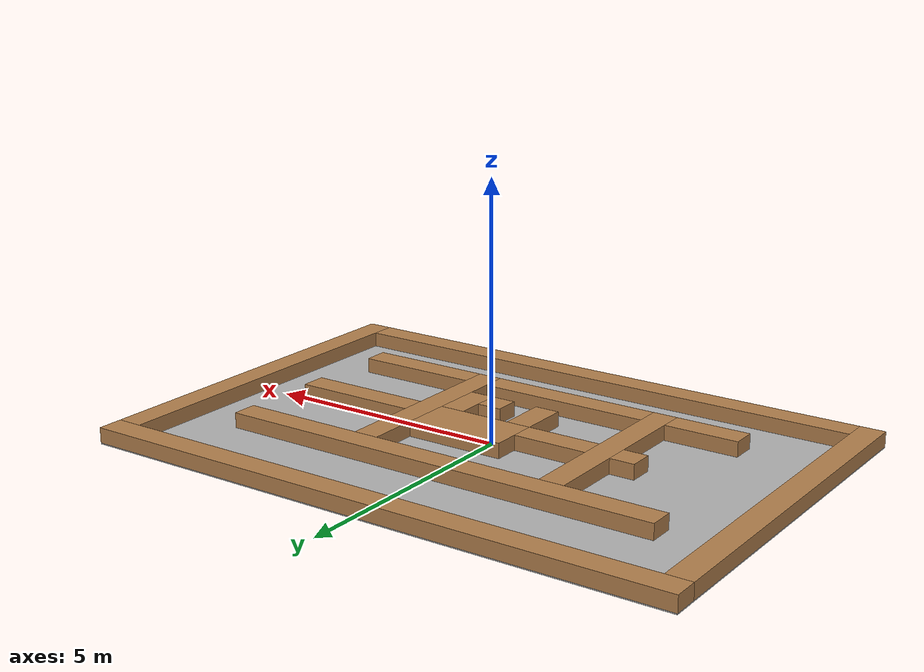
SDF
<?xml version='1.0'?>
<sdf version='1.7'><world name='default'>
  <gravity>0 0 -9.81</gravity>
  <scene><ambient>0.4 0.4 0.4 1</ambient></scene>
  <light name='sun' type='directional'>
    <pose>0 0 10 0 0 0</pose><diffuse>1 1 1 1</diffuse><specular>0.1 0.1 0.1 1</specular>
    <attenuation><range>120</range><constant>0.9</constant><linear>0.01</linear><quadratic>0.001</quadratic></attenuation>
    <direction>-0.5 0.5 -1</direction>
  </light>

    <model name='floor'><pose>0 0 -0.01 0 0 0</pose><static>true</static>
    <link name='l'>
      <collision name='c'><geometry><box><size>12.0 8.0 0.02</size></box></geometry></collision>
      <visual name='v'><geometry><box><size>12.0 8.0 0.02</size></box></geometry><material><ambient>0.30 0.30 0.30 1</ambient><diffuse>0.70 0.70 0.70 1</diffuse><specular>0.10 0.10 0.10 1</specular></material></visual>
    </link></model>

    <model name='wall_0_0'><pose>0.0 3.75 0.15 0 0 0</pose><static>true</static>
    <link name='l'>
      <collision name='c'><geometry><box><size>12.0 0.5 0.3</size></box></geometry></collision>
      <visual name='v'><geometry><box><size>12.0 0.5 0.3</size></box></geometry><material><ambient>0.30 0.20 0.10 1</ambient><diffuse>0.70 0.50 0.30 1</diffuse><specular>0.10 0.10 0.10 1</specular></material></visual>
    </link></model>
    <model name='wall_1_0'><pose>-5.75 -0.25 0.15 0 0 0</pose><static>true</static>
    <link name='l'>
      <collision name='c'><geometry><box><size>0.5 7.5 0.3</size></box></geometry></collision>
      <visual name='v'><geometry><box><size>0.5 7.5 0.3</size></box></geometry><material><ambient>0.30 0.20 0.10 1</ambient><diffuse>0.70 0.50 0.30 1</diffuse><specular>0.10 0.10 0.10 1</specular></material></visual>
    </link></model>
    <model name='wall_1_23'><pose>5.75 -0.25 0.15 0 0 0</pose><static>true</static>
    <link name='l'>
      <collision name='c'><geometry><box><size>0.5 7.5 0.3</size></box></geometry></collision>
      <visual name='v'><geometry><box><size>0.5 7.5 0.3</size></box></geometry><material><ambient>0.30 0.20 0.10 1</ambient><diffuse>0.70 0.50 0.30 1</diffuse><specular>0.10 0.10 0.10 1</specular></material></visual>
    </link></model>
    <model name='wall_4_3'><pose>0.0 1.75 0.15 0 0 0</pose><static>true</static>
    <link name='l'>
      <collision name='c'><geometry><box><size>9.0 0.5 0.3</size></box></geometry></collision>
      <visual name='v'><geometry><box><size>9.0 0.5 0.3</size></box></geometry><material><ambient>0.30 0.20 0.10 1</ambient><diffuse>0.70 0.50 0.30 1</diffuse><specular>0.10 0.10 0.10 1</specular></material></visual>
    </link></model>
    <model name='wall_5_7'><pose>-2.25 -0.5 0.15 0 0 0</pose><static>true</static>
    <link name='l'>
      <collision name='c'><geometry><box><size>0.5 4.0 0.3</size></box></geometry></collision>
      <visual name='v'><geometry><box><size>0.5 4.0 0.3</size></box></geometry><material><ambient>0.30 0.20 0.10 1</ambient><diffuse>0.70 0.50 0.30 1</diffuse><specular>0.10 0.10 0.10 1</specular></material></visual>
    </link></model>
    <model name='wall_5_15'><pose>1.75 -0.5 0.15 0 0 0</pose><static>true</static>
    <link name='l'>
      <collision name='c'><geometry><box><size>0.5 4.0 0.3</size></box></geometry></collision>
      <visual name='v'><geometry><box><size>0.5 4.0 0.3</size></box></geometry><material><ambient>0.30 0.20 0.10 1</ambient><diffuse>0.70 0.50 0.30 1</diffuse><specular>0.10 0.10 0.10 1</specular></material></visual>
    </link></model>
    <model name='wall_7_11'><pose>0.5 0.0 0.15 0 0 0</pose><static>true</static>
    <link name='l'>
      <collision name='c'><geometry><box><size>2.0 1.0 0.3</size></box></geometry></collision>
      <visual name='v'><geometry><box><size>2.0 1.0 0.3</size></box></geometry><material><ambient>0.30 0.20 0.10 1</ambient><diffuse>0.70 0.50 0.30 1</diffuse><specular>0.10 0.10 0.10 1</specular></material></visual>
    </link></model>
    <model name='wall_8_6'><pose>-2.75 -0.25 0.15 0 0 0</pose><static>true</static>
    <link name='l'>
      <collision name='c'><geometry><box><size>0.5 0.5 0.3</size></box></geometry></collision>
      <visual name='v'><geometry><box><size>0.5 0.5 0.3</size></box></geometry><material><ambient>0.30 0.20 0.10 1</ambient><diffuse>0.70 0.50 0.30 1</diffuse><specular>0.10 0.10 0.10 1</specular></material></visual>
    </link></model>
    <model name='wall_8_8'><pose>-1.25 -0.25 0.15 0 0 0</pose><static>true</static>
    <link name='l'>
      <collision name='c'><geometry><box><size>1.5 0.5 0.3</size></box></geometry></collision>
      <visual name='v'><geometry><box><size>1.5 0.5 0.3</size></box></geometry><material><ambient>0.30 0.20 0.10 1</ambient><diffuse>0.70 0.50 0.30 1</diffuse><specular>0.10 0.10 0.10 1</specular></material></visual>
    </link></model>
    <model name='wall_8_16'><pose>3.25 -0.25 0.15 0 0 0</pose><static>true</static>
    <link name='l'>
      <collision name='c'><geometry><box><size>2.5 0.5 0.3</size></box></geometry></collision>
      <visual name='v'><geometry><box><size>2.5 0.5 0.3</size></box></geometry><material><ambient>0.30 0.20 0.10 1</ambient><diffuse>0.70 0.50 0.30 1</diffuse><specular>0.10 0.10 0.10 1</specular></material></visual>
    </link></model>
    <model name='wall_9_11'><pose>-0.25 -1.0 0.15 0 0 0</pose><static>true</static>
    <link name='l'>
      <collision name='c'><geometry><box><size>0.5 1.0 0.3</size></box></geometry></collision>
      <visual name='v'><geometry><box><size>0.5 1.0 0.3</size></box></geometry><material><ambient>0.30 0.20 0.10 1</ambient><diffuse>0.70 0.50 0.30 1</diffuse><specular>0.10 0.10 0.10 1</specular></material></visual>
    </link></model>
    <model name='wall_9_14'><pose>1.25 -1.0 0.15 0 0 0</pose><static>true</static>
    <link name='l'>
      <collision name='c'><geometry><box><size>0.5 1.0 0.3</size></box></geometry></collision>
      <visual name='v'><geometry><box><size>0.5 1.0 0.3</size></box></geometry><material><ambient>0.30 0.20 0.10 1</ambient><diffuse>0.70 0.50 0.30 1</diffuse><specular>0.10 0.10 0.10 1</specular></material></visual>
    </link></model>
    <model name='wall_10_13'><pose>0.75 -1.25 0.15 0 0 0</pose><static>true</static>
    <link name='l'>
      <collision name='c'><geometry><box><size>0.5 0.5 0.3</size></box></geometry></collision>
      <visual name='v'><geometry><box><size>0.5 0.5 0.3</size></box></geometry><material><ambient>0.30 0.20 0.10 1</ambient><diffuse>0.70 0.50 0.30 1</diffuse><specular>0.10 0.10 0.10 1</specular></material></visual>
    </link></model>
    <model name='wall_12_4'><pose>-3.25 -2.25 0.15 0 0 0</pose><static>true</static>
    <link name='l'>
      <collision name='c'><geometry><box><size>1.5 0.5 0.3</size></box></geometry></collision>
      <visual name='v'><geometry><box><size>1.5 0.5 0.3</size></box></geometry><material><ambient>0.30 0.20 0.10 1</ambient><diffuse>0.70 0.50 0.30 1</diffuse><specular>0.10 0.10 0.10 1</specular></material></visual>
    </link></model>
    <model name='wall_12_8'><pose>-0.25 -2.25 0.15 0 0 0</pose><static>true</static>
    <link name='l'>
      <collision name='c'><geometry><box><size>3.5 0.5 0.3</size></box></geometry></collision>
      <visual name='v'><geometry><box><size>3.5 0.5 0.3</size></box></geometry><material><ambient>0.30 0.20 0.10 1</ambient><diffuse>0.70 0.50 0.30 1</diffuse><specular>0.10 0.10 0.10 1</specular></material></visual>
    </link></model>
    <model name='wall_12_16'><pose>3.25 -2.25 0.15 0 0 0</pose><static>true</static>
    <link name='l'>
      <collision name='c'><geometry><box><size>2.5 0.5 0.3</size></box></geometry></collision>
      <visual name='v'><geometry><box><size>2.5 0.5 0.3</size></box></geometry><material><ambient>0.30 0.20 0.10 1</ambient><diffuse>0.70 0.50 0.30 1</diffuse><specular>0.10 0.10 0.10 1</specular></material></visual>
    </link></model>
    <model name='wall_15_1'><pose>0.0 -3.75 0.15 0 0 0</pose><static>true</static>
    <link name='l'>
      <collision name='c'><geometry><box><size>11.0 0.5 0.3</size></box></geometry></collision>
      <visual name='v'><geometry><box><size>11.0 0.5 0.3</size></box></geometry><material><ambient>0.30 0.20 0.10 1</ambient><diffuse>0.70 0.50 0.30 1</diffuse><specular>0.10 0.10 0.10 1</specular></material></visual>
    </link></model></world></sdf>
